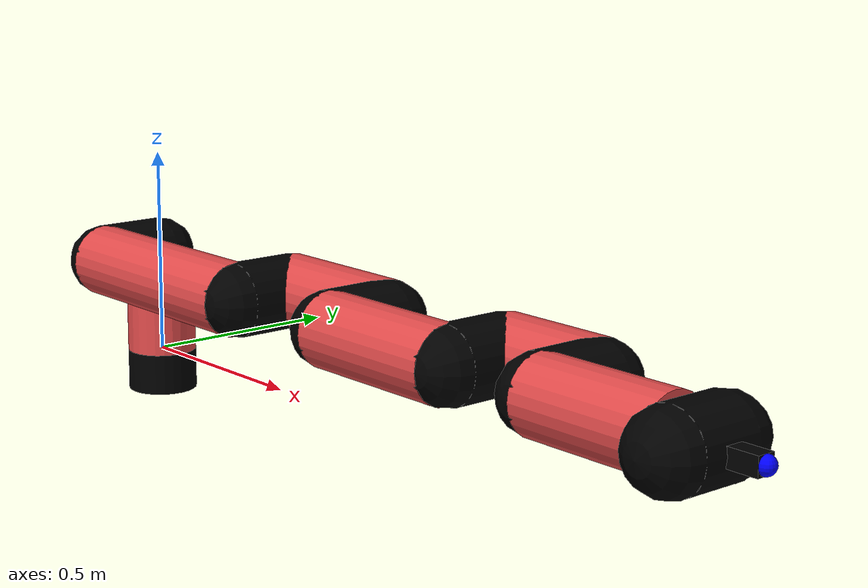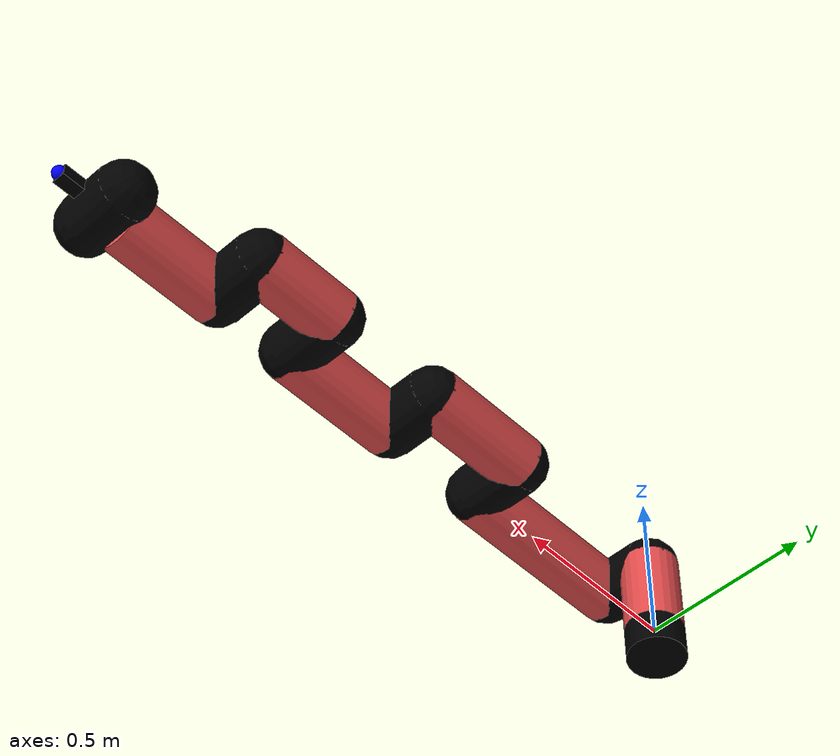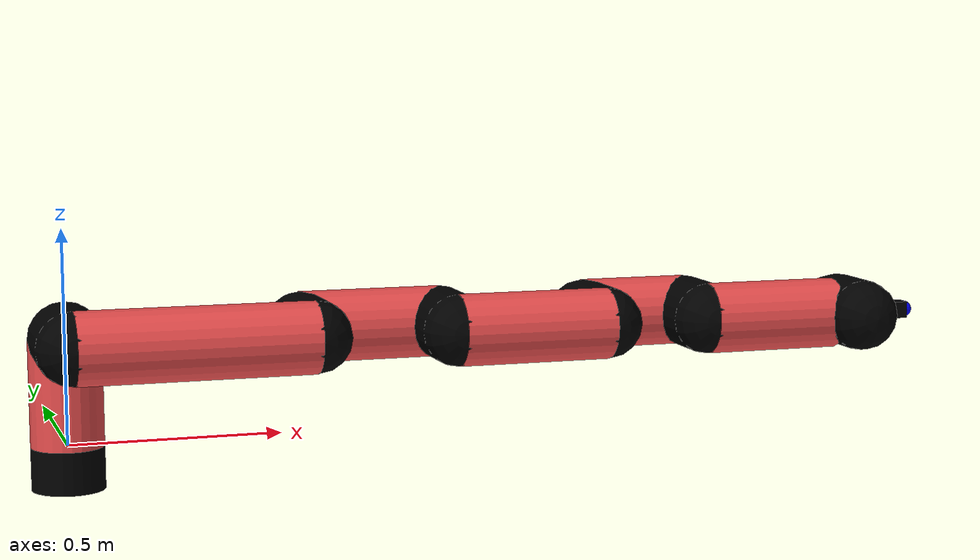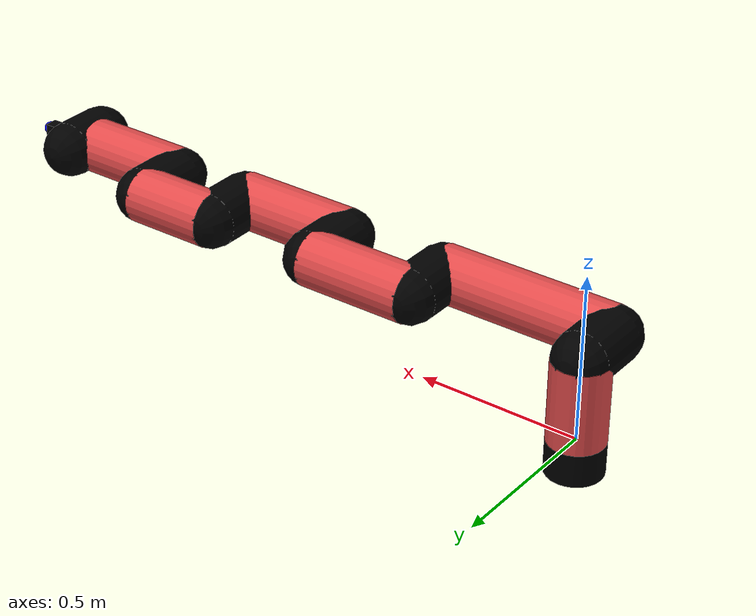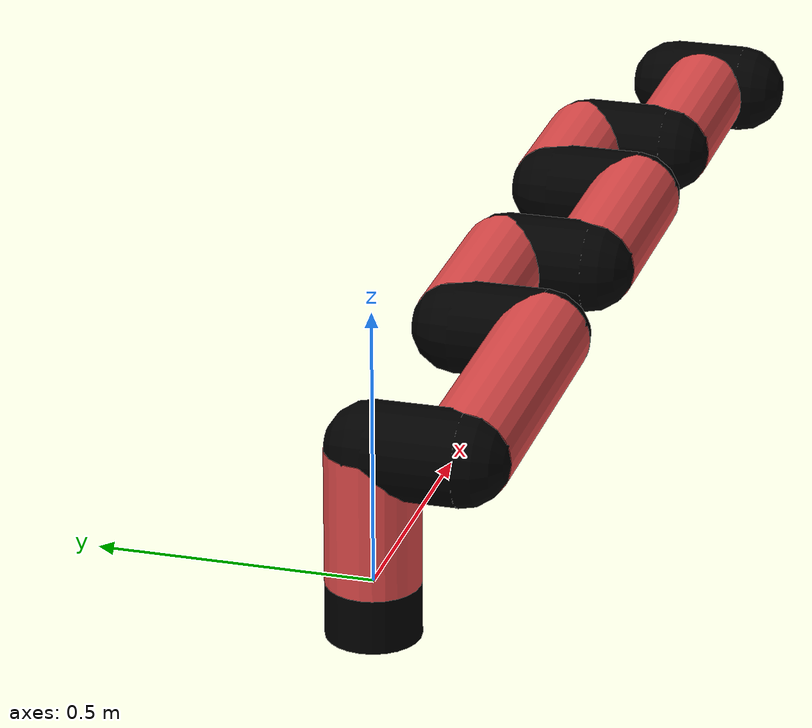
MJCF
<mujoco model="manipulator">
		<compiler angle="degree" coordinate="local" inertiafromgeom="auto" meshdir="meshes/"/>
		<option gravity="0 0 0" integrator="RK4" iterations="30" timestep="0.01"/>

		<default>
		<joint armature="1" limited="true" stiffness="10" damping="15" frictionloss="5.0"/>
		<geom conaffinity="1" condim="3" contype="1" friction=".5 .1 .1" margin="0.002"/>
		<motor ctrllimited="true"/>
		<position ctrllimited="true"/>
		</default>

		<asset>
		<texture builtin="gradient" height="100" rgb1="1.0 1.0 1.0" rgb2="1.0 1.0 1.0" type="skybox" width="100"/>
		<texture builtin="flat" height="32" name="arm_tex" rgb1="0.9 0.3 0.3" type="2d" width="32"/>
		<texture builtin="flat" height="32" name="gripper_tex" rgb1="0.0 0.0 0.0" type="cube" width="32"/>

		<material name="arm_mat" shininess="0.1" specular="0.1" texture="arm_tex"/>
		<material name="gripper_mat" shininess="1" specular="1" texture="gripper_tex"/>
		</asset>

		<worldbody>
		<light cutoff="45" diffuse=".8 .8 .8" dir="0 0.16 -1" directional="false" name="light" pos="0 -2.0 8.0" specular="0.3 0.3 0.3"/>

		<body name="base_link" pos="0 0 -0.1">
		<geom fromto="0 0 0 0 0 0.1" material="arm_mat" name="base_link" rgba="0.0 0.0 0.0 1" size="0.085" type="cylinder"/>
		</body>

		<body name="l1" pos="0 0 0">
<geom fromto="0 0 0 0 0 0.25" material="arm_mat" name="l1" rgba="0.9 0.3 0.3 1" size="0.085" type="cylinder"/>
<geom fromto="0 0 0.25 0 -0.16 0.25" material="arm_mat" name="l1_ex" rgba="0.0 0.0 0.0 1" size="0.085" type="capsule"/>
<joint axis="0 0 1" name="j1" pos="0 0 0" range="-90 90" damping="33.99" frictionloss="11.92"/>

<body name="l2" pos="0 -0.16 0.25">
<geom fromto="0 0 0 0.55 0 0" material="arm_mat" name="l2" rgba="0.9 0.3 0.3 1" size="0.085" type="cylinder"/>
<geom fromto="0.55 0 0 0.55 0.16 0" material="arm_mat" name="l2_ex" rgba="0.0 0.0 0.0 1" size="0.085" type="capsule"/>
<joint axis="-0.09 1.21 0.2" name="j2" pos="0 0 0" range="-90 60" damping="35.23" frictionloss="9.36"/>

<body name="l3" pos="0.55 0.16 0">
<geom fromto="0 0 0 0.34 0 0" material="arm_mat" name="l3" rgba="0.9 0.3 0.3 1" size="0.085" type="cylinder"/>
<geom fromto="0.34 0 0 0.34 -0.16 0" material="arm_mat" name="l3_ex" rgba="0.0 0.0 0.0 1" size="0.085" type="capsule"/>
<joint axis="-0.12 0.81 -0.15" name="j3" pos="0 0 0" range="-30 60" damping="31.42" frictionloss="11.78"/>

<body name="l4" pos="0.34 -0.16 0">
<geom fromto="0 0 0 0.37 0 0" material="arm_mat" name="l4" rgba="0.9 0.3 0.3 1" size="0.085" type="cylinder"/>
<geom fromto="0.37 0 0 0.37 0.16 0" material="arm_mat" name="l4_ex" rgba="0.0 0.0 0.0 1" size="0.085" type="capsule"/>
<joint axis="-0.0 1.11 -0.15" name="j4" pos="0 0 0" range="-30 60" damping="31.07" frictionloss="8.38"/>

<body name="l5" pos="0.37 0.16 0">
<geom fromto="0 0 0 0.26 0 0" material="arm_mat" name="l5" rgba="0.9 0.3 0.3 1" size="0.085" type="cylinder"/>
<geom fromto="0.26 0 0 0.26 -0.16 0" material="arm_mat" name="l5_ex" rgba="0.0 0.0 0.0 1" size="0.085" type="capsule"/>
<joint axis="-0.13 1.18 -0.04" name="j5" pos="0 0 0" range="-30 60" damping="31.04" frictionloss="11.29"/>

<body name="l6" pos="0.26 -0.16 0">
<geom fromto="0 0 0 0.33 0 0" material="arm_mat" name="l6" rgba="0.9 0.3 0.3 1" size="0.085" type="cylinder"/>
<joint axis="0.06 0.87 -0.2" name="j6" pos="0 0 0" range="-30 60" damping="33.26" frictionloss="9.24"/>

<body name="gripper" pos="0.33 0 0">
<geom fromto="0.05 -0.07 0 0.05 0.07 0" material="gripper_mat" name="gripper" rgba="0.0 0.0 0.0 1" size="0.085" type="capsule"/><joint axis="1 0 0" name="j7" pos="0 0 0" range="-90 90" damping="15" frictionloss="5.0"/><body name="finger" pos="0.1 0 0">
<geom fromto="0 0.0 0 0.1 0.0 0" material="gripper_mat" name="finger" rgba="0.0 0.0 0.0 1" size="0.020 0.06 0.06" type="box"/>
</body>
<site name="current" pos="0.2 0. 0.0" rgba="0. 0. 1.0 1" size="0.02" type="sphere"/>
</body>
</body>
</body>
</body>
</body>
</body>
</body>
</worldbody>
<actuator>
<motor ctrllimited="true" ctrlrange="-1.0 1.0" joint="j1" gear="72.47"/>
<motor ctrllimited="true" ctrlrange="-1.0 1.0" joint="j2" gear="88.05"/>
<motor ctrllimited="true" ctrlrange="-1.0 1.0" joint="j3" gear="95.86"/>
<motor ctrllimited="true" ctrlrange="-1.0 1.0" joint="j4" gear="70.02"/>
<motor ctrllimited="true" ctrlrange="-1.0 1.0" joint="j5" gear="62.09"/>
<motor ctrllimited="true" ctrlrange="-1.0 1.0" joint="j6" gear="80.6"/>
<motor ctrllimited="true" ctrlrange="-1.0 1.0" joint="j7" gear="80"/>
</actuator>
</mujoco>
